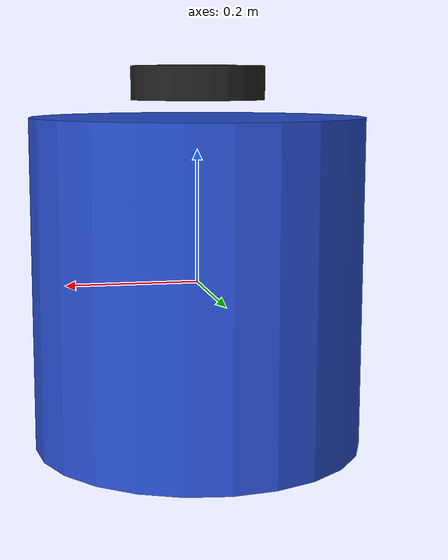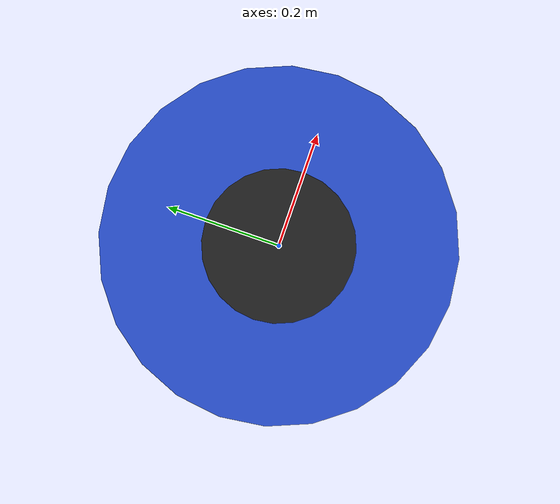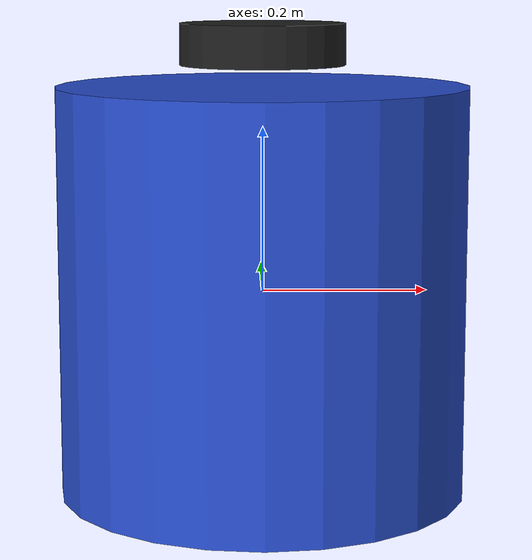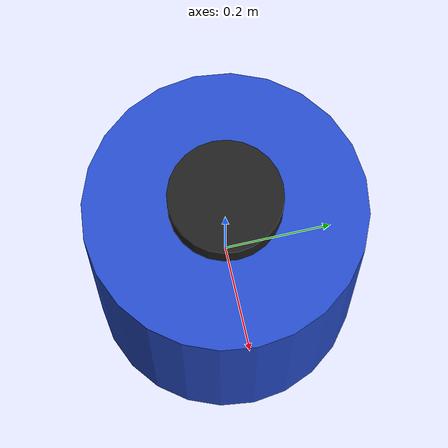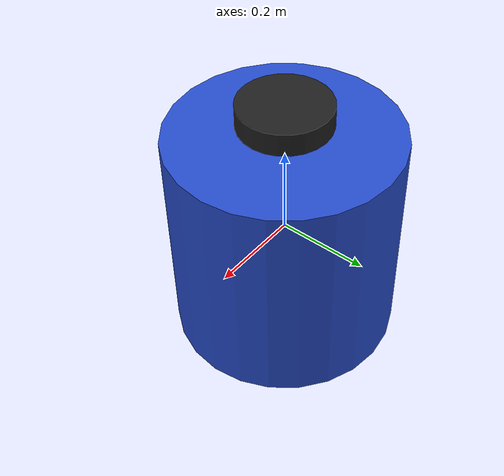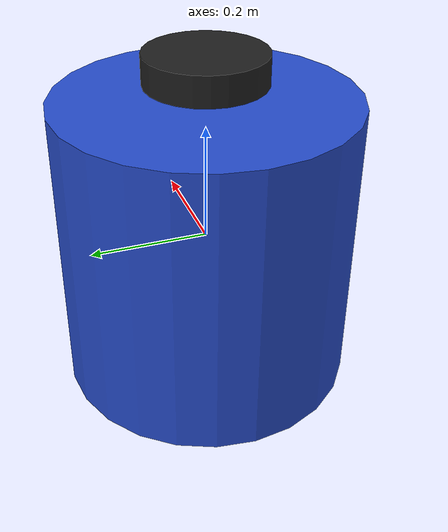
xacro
<?xml version="1.0"?>
<robot xmlns:xacro="http://www.ros.org/wiki/xacro" name="lidar_robot">

  <!-- Define the robot's main body -->
  <link name="base_link">
    <visual>
      <geometry>
        <cylinder radius="0.25" length="0.5"/>
      </geometry>
      <material name="blue"/>
    </visual>
    <collision>
      <geometry>
        <cylinder radius="0.25" length="0.5"/>
      </geometry>
    </collision>
    <inertial>
      <mass value="1.0"/>
      <inertia ixx="0.01" ixy="0.0" ixz="0.0" iyy="0.01" iyz="0.0" izz="0.02"/>
    </inertial>
  </link>

  <!-- Define the LIDAR sensor -->
  <link name="lidar_link">
    <visual>
      <geometry>
        <cylinder radius="0.1" length="0.05"/>
      </geometry>
      <material name="black"/>
    </visual>
    <collision>
      <geometry>
        <cylinder radius="0.1" length="0.05"/>
      </geometry>
    </collision>
    <inertial>
      <mass value="0.5"/>
      <inertia ixx="0.01" ixy="0.0" ixz="0.0" iyy="0.01" iyz="0.0" izz="0.02"/>
    </inertial>
  </link>

  <!-- Define the joint connecting the base and LIDAR -->
  <joint name="lidar_mount" type="fixed">
    <parent link="base_link"/>
    <child link="lidar_link"/>
    <origin xyz="0 0 0.3" rpy="0 0 0"/>
  </joint>

  <!-- Define the LIDAR sensor plugin -->
  <gazebo>
    <sensor type="ray" name="lidar_sensor">
      <pose>0 0 0 0 0 0</pose>
      <ray>
        <scan>
          <horizontal>
            <samples>512</samples>
            <resolution>1</resolution>
            <min_angle>-1.5708</min_angle> <!-- -90 degrees -->
            <max_angle>1.5708</max_angle> <!-- 90 degrees -->
            <range_min>0.1</range_min>
            <range_max>10.0</range_max>
          </horizontal>
        </scan>
        <range>
          <min>0.1</min>
          <max>10.0</max>
        </range>
        <noise>
          <type>gaussian</type>
          <mean>0.0</mean>
          <stddev>0.01</stddev>
        </noise>
      </ray>
    </sensor>
  </gazebo>

  <!-- Add a simple plugin for controlling the robot -->
  <gazebo>
    <plugin name="lidar_plugin" filename="libgazebo_ros_control.so">
      <robotNamespace>/lidar_robot</robotNamespace>
      <robotSimType>ros_control</robotSimType>
    </plugin>
  </gazebo>

</robot>
